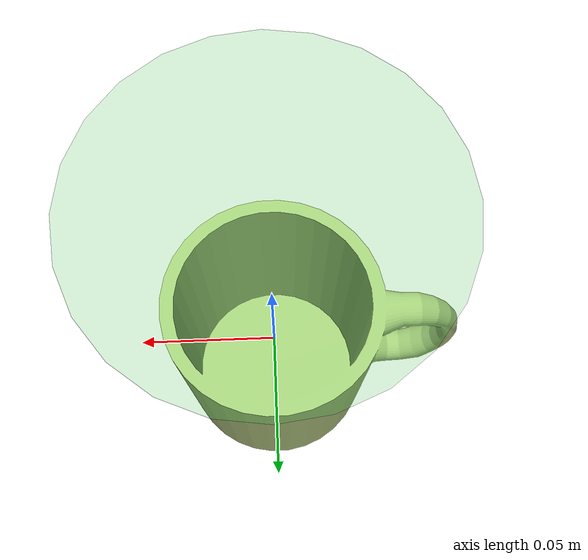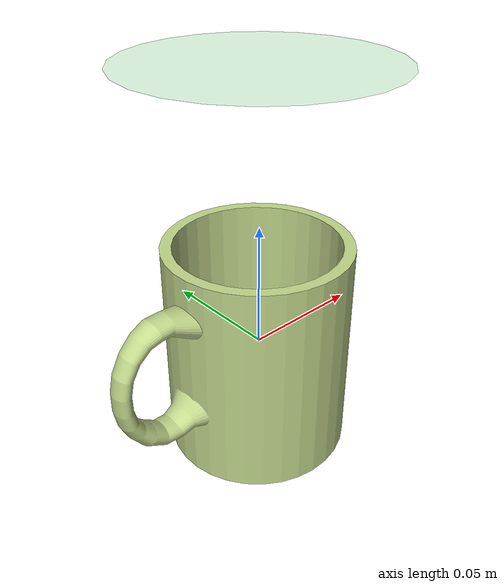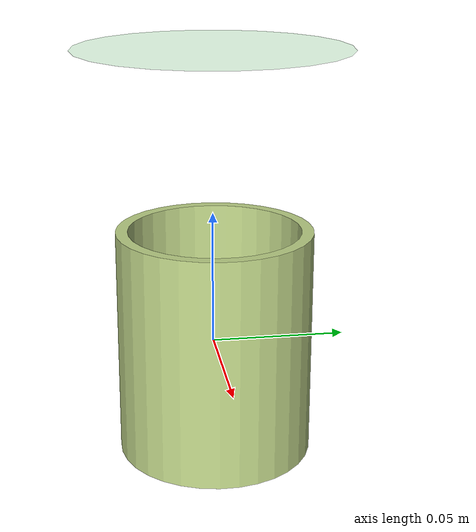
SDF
<sdf version="1.5">
    <model name="mug">
        <pose>0.000000 0.000000 0.000000 0.000000 -0.000000 0.000000</pose>
        <link name="mug_link">
            <pose>0.000000 0.000000 0.000000 0.000000 -0.000000 0.000000</pose>
            <inertial>
                <pose>0 0 0.05 0 0 0</pose>
                <inertia>
                    <ixx>0.00050</ixx>
                    <ixy>0.00000</ixy>
                    <ixz>0.00000</ixz>
                    <iyy>0.00050</iyy>
                    <iyz>0.00000</iyz>
                    <izz>0.00080</izz>
                </inertia>
                <mass>0.25</mass>
            </inertial>

            <collision name="mug_collision">
                <pose>0 0 0 0 0 0</pose>
                <geometry>
                    <mesh>
                        <uri>model://mug/meshes/mug.stl</uri>
                        <scale>1 1 1</scale>
                    </mesh>
                </geometry>
                <surface>
                    <friction>
                        <ode>
                            <mu>0.3</mu>
                            <mu2>0.3</mu2>
                            <slip1>10.0</slip1>
                            <slip2>10.0</slip2>
                        </ode>
                    </friction>
                    <bounce>
                        <restitution_coefficient>0.000000</restitution_coefficient>
                        <threshold>100000.000000</threshold>
                    </bounce>
                    <contact>
                        <ode>
                            <soft_cfm>0.000000</soft_cfm>
                            <soft_erp>0.200000</soft_erp>
                            <kp>1000000000000.000000</kp>
                            <kd>1.000000</kd>
                            <max_vel>100.000000</max_vel>
                            <min_depth>0.001000</min_depth>
                        </ode>
                    </contact>
                </surface>
            </collision>

            <visual name="mug_visual">
                <pose>0.000000 0.000000 0.000000 0.000000 -0.000000 0.000000</pose>
                <geometry>
                    <mesh>
                        <uri>model://mug/meshes/mug.dae</uri>
                        <scale>1 1 1</scale>
                    </mesh>
                </geometry>
                <cast_shadows>1</cast_shadows>
            </visual>

	<!-- MUG VIRTUAL CAP, FOR COUNTING SPHERES LEAVING THE MUG -->
            <collision name="mug_cap_collision">
                <pose>0.0 0.0 0.11 0.0 0.0 0.0</pose>
                <geometry>
                    <cylinder>
                        <radius>0.05</radius>
                        <length>0.000002</length>
                    </cylinder>
                </geometry>
                <surface>
                    <contact>
			<collide_without_contact>true</collide_without_contact>
                    </contact>
                </surface>
            </collision>
            <visual name="mug_cap_visual">
                <pose>0.0 0.0 0.11 0.0 0.0 0.0</pose>
                <geometry>
                    <cylinder>
                        <radius>0.05</radius>
                        <length>0.000002</length>
                    </cylinder>
                </geometry>
                <material>
                    <script>
                        <uri>file://media/materials/scripts/gazebo.material</uri>
                        <name>Gazebo/Green</name>
                    </script>
                </material>
                <transparency>0.9</transparency>
            </visual>
        </link>
	<allow_auto_disable>false</allow_auto_disable>

    <plugin name="model_printout" filename="build/libmodel_printout.so"/>
    </model>
</sdf>
